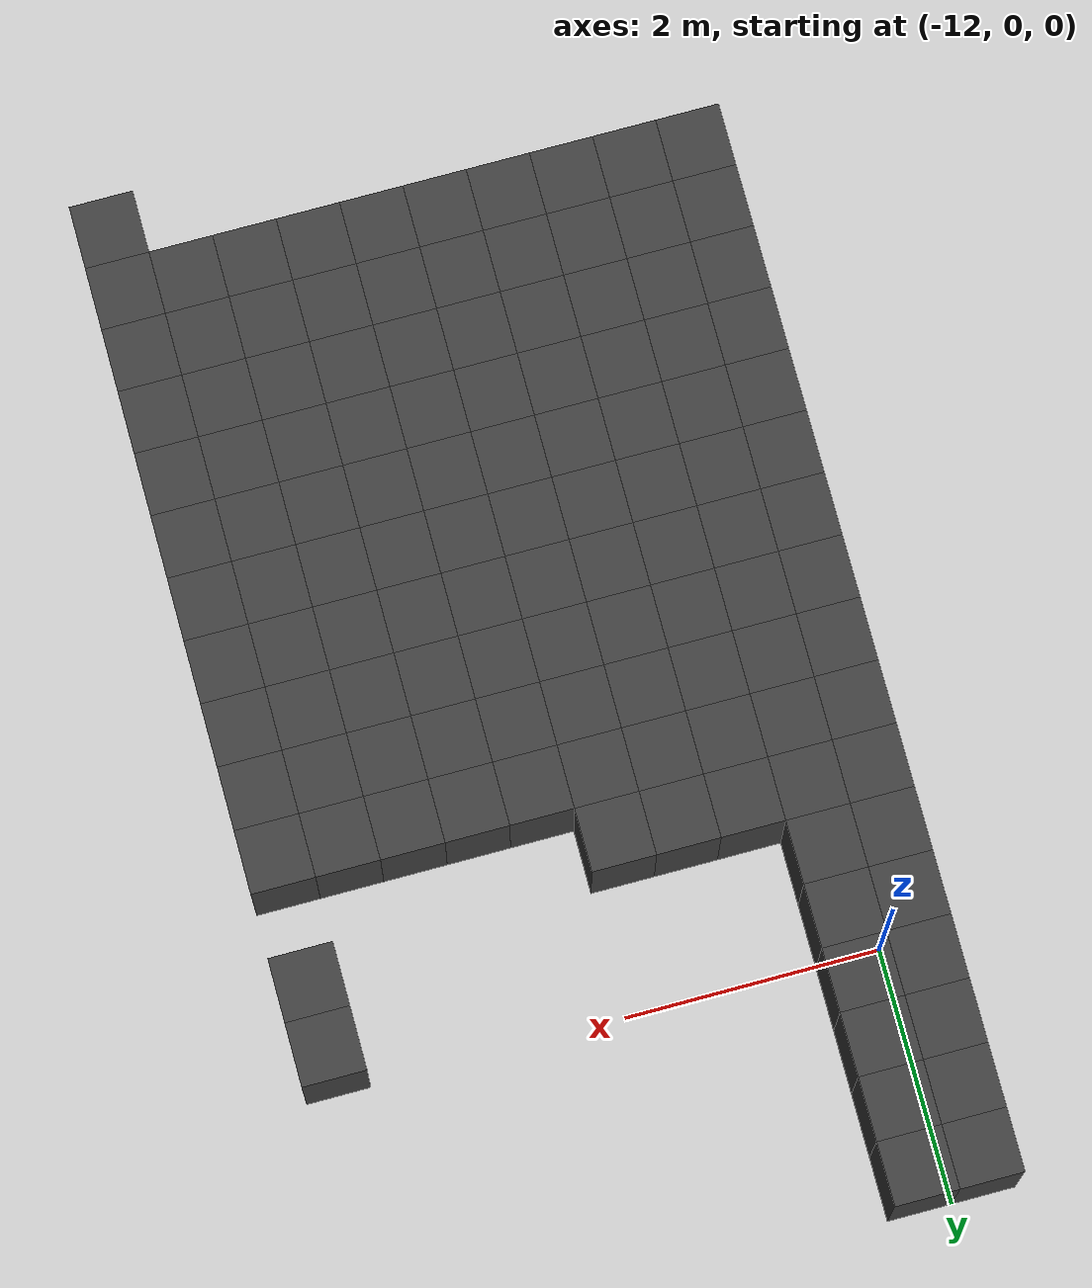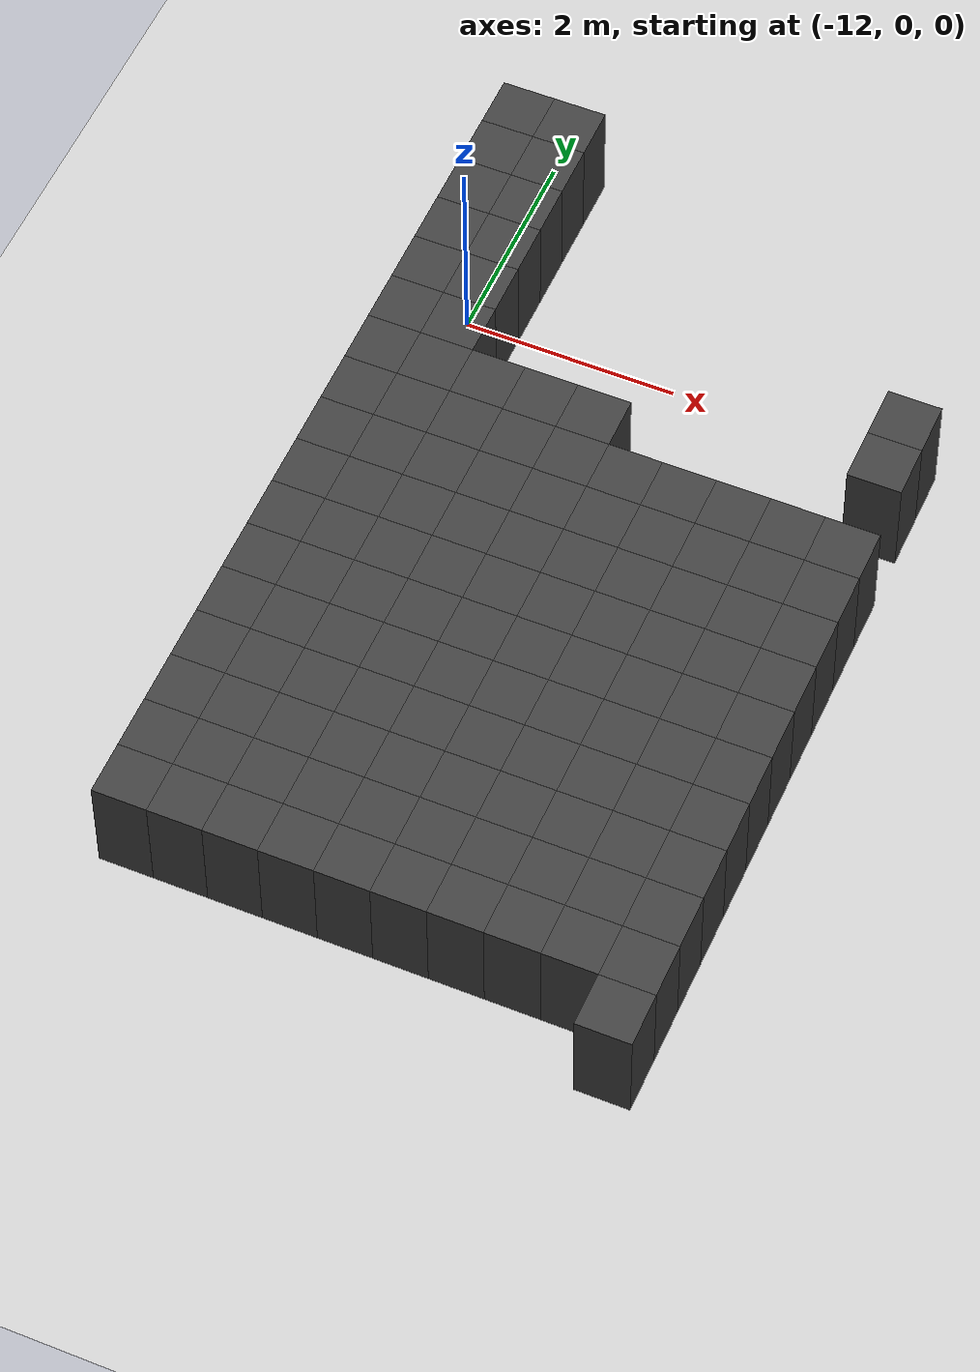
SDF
<sdf version="1.7">
 <world name="map_12885">
  <model name="ground_plane">
   <static>true</static>
   <link name="link">
    <collision name="collision">
     <geometry><plane><normal>0 0 1</normal><size>200 200</size></plane></geometry>
    </collision>
    <visual name="visual">
     <geometry><plane><normal>0 0 1</normal><size>200 200</size></plane></geometry>
     <material><ambient>0.8 0.8 0.8 1</ambient><diffuse>0.8 0.8 0.8 1</diffuse></material>
    </visual>
   </link>
  </model>
  <model name="maze_environment">
   <static>true</static>
   <link name="wall_890">
    <pose>-12.250 1.750 0.500 0 0 0</pose>
    <collision name="col"><geometry><box><size>0.5 0.5 1.0</size></box></geometry></collision>
    <visual name="vis">
     <geometry><box><size>0.5 0.5 1.0</size></box></geometry>
     <material><ambient>0.15 0.15 0.15 1</ambient><diffuse>0.25 0.25 0.25 1</diffuse></material>
    </visual>
   </link>
   <link name="wall_891">
    <pose>-11.750 1.750 0.500 0 0 0</pose>
    <collision name="col"><geometry><box><size>0.5 0.5 1.0</size></box></geometry></collision>
    <visual name="vis">
     <geometry><box><size>0.5 0.5 1.0</size></box></geometry>
     <material><ambient>0.15 0.15 0.15 1</ambient><diffuse>0.25 0.25 0.25 1</diffuse></material>
    </visual>
   </link>
   <link name="wall_932">
    <pose>-12.250 1.250 0.500 0 0 0</pose>
    <collision name="col"><geometry><box><size>0.5 0.5 1.0</size></box></geometry></collision>
    <visual name="vis">
     <geometry><box><size>0.5 0.5 1.0</size></box></geometry>
     <material><ambient>0.15 0.15 0.15 1</ambient><diffuse>0.25 0.25 0.25 1</diffuse></material>
    </visual>
   </link>
   <link name="wall_933">
    <pose>-11.750 1.250 0.500 0 0 0</pose>
    <collision name="col"><geometry><box><size>0.5 0.5 1.0</size></box></geometry></collision>
    <visual name="vis">
     <geometry><box><size>0.5 0.5 1.0</size></box></geometry>
     <material><ambient>0.15 0.15 0.15 1</ambient><diffuse>0.25 0.25 0.25 1</diffuse></material>
    </visual>
   </link>
   <link name="wall_971">
    <pose>-12.250 0.750 0.500 0 0 0</pose>
    <collision name="col"><geometry><box><size>0.5 0.5 1.0</size></box></geometry></collision>
    <visual name="vis">
     <geometry><box><size>0.5 0.5 1.0</size></box></geometry>
     <material><ambient>0.15 0.15 0.15 1</ambient><diffuse>0.25 0.25 0.25 1</diffuse></material>
    </visual>
   </link>
   <link name="wall_972">
    <pose>-11.750 0.750 0.500 0 0 0</pose>
    <collision name="col"><geometry><box><size>0.5 0.5 1.0</size></box></geometry></collision>
    <visual name="vis">
     <geometry><box><size>0.5 0.5 1.0</size></box></geometry>
     <material><ambient>0.15 0.15 0.15 1</ambient><diffuse>0.25 0.25 0.25 1</diffuse></material>
    </visual>
   </link>
   <link name="wall_1010">
    <pose>-12.250 0.250 0.500 0 0 0</pose>
    <collision name="col"><geometry><box><size>0.5 0.5 1.0</size></box></geometry></collision>
    <visual name="vis">
     <geometry><box><size>0.5 0.5 1.0</size></box></geometry>
     <material><ambient>0.15 0.15 0.15 1</ambient><diffuse>0.25 0.25 0.25 1</diffuse></material>
    </visual>
   </link>
   <link name="wall_1011">
    <pose>-11.750 0.250 0.500 0 0 0</pose>
    <collision name="col"><geometry><box><size>0.5 0.5 1.0</size></box></geometry></collision>
    <visual name="vis">
     <geometry><box><size>0.5 0.5 1.0</size></box></geometry>
     <material><ambient>0.15 0.15 0.15 1</ambient><diffuse>0.25 0.25 0.25 1</diffuse></material>
    </visual>
   </link>
   <link name="wall_1047">
    <pose>-12.250 -0.250 0.500 0 0 0</pose>
    <collision name="col"><geometry><box><size>0.5 0.5 1.0</size></box></geometry></collision>
    <visual name="vis">
     <geometry><box><size>0.5 0.5 1.0</size></box></geometry>
     <material><ambient>0.15 0.15 0.15 1</ambient><diffuse>0.25 0.25 0.25 1</diffuse></material>
    </visual>
   </link>
   <link name="wall_1048">
    <pose>-11.750 -0.250 0.500 0 0 0</pose>
    <collision name="col"><geometry><box><size>0.5 0.5 1.0</size></box></geometry></collision>
    <visual name="vis">
     <geometry><box><size>0.5 0.5 1.0</size></box></geometry>
     <material><ambient>0.15 0.15 0.15 1</ambient><diffuse>0.25 0.25 0.25 1</diffuse></material>
    </visual>
   </link>
   <link name="wall_1049">
    <pose>-7.750 -0.250 0.500 0 0 0</pose>
    <collision name="col"><geometry><box><size>0.5 0.5 1.0</size></box></geometry></collision>
    <visual name="vis">
     <geometry><box><size>0.5 0.5 1.0</size></box></geometry>
     <material><ambient>0.15 0.15 0.15 1</ambient><diffuse>0.25 0.25 0.25 1</diffuse></material>
    </visual>
   </link>
   <link name="wall_1081">
    <pose>-12.250 -0.750 0.500 0 0 0</pose>
    <collision name="col"><geometry><box><size>0.5 0.5 1.0</size></box></geometry></collision>
    <visual name="vis">
     <geometry><box><size>0.5 0.5 1.0</size></box></geometry>
     <material><ambient>0.15 0.15 0.15 1</ambient><diffuse>0.25 0.25 0.25 1</diffuse></material>
    </visual>
   </link>
   <link name="wall_1082">
    <pose>-11.750 -0.750 0.500 0 0 0</pose>
    <collision name="col"><geometry><box><size>0.5 0.5 1.0</size></box></geometry></collision>
    <visual name="vis">
     <geometry><box><size>0.5 0.5 1.0</size></box></geometry>
     <material><ambient>0.15 0.15 0.15 1</ambient><diffuse>0.25 0.25 0.25 1</diffuse></material>
    </visual>
   </link>
   <link name="wall_1083">
    <pose>-7.750 -0.750 0.500 0 0 0</pose>
    <collision name="col"><geometry><box><size>0.5 0.5 1.0</size></box></geometry></collision>
    <visual name="vis">
     <geometry><box><size>0.5 0.5 1.0</size></box></geometry>
     <material><ambient>0.15 0.15 0.15 1</ambient><diffuse>0.25 0.25 0.25 1</diffuse></material>
    </visual>
   </link>
   <link name="wall_1115">
    <pose>-12.250 -1.250 0.500 0 0 0</pose>
    <collision name="col"><geometry><box><size>0.5 0.5 1.0</size></box></geometry></collision>
    <visual name="vis">
     <geometry><box><size>0.5 0.5 1.0</size></box></geometry>
     <material><ambient>0.15 0.15 0.15 1</ambient><diffuse>0.25 0.25 0.25 1</diffuse></material>
    </visual>
   </link>
   <link name="wall_1116">
    <pose>-11.750 -1.250 0.500 0 0 0</pose>
    <collision name="col"><geometry><box><size>0.5 0.5 1.0</size></box></geometry></collision>
    <visual name="vis">
     <geometry><box><size>0.5 0.5 1.0</size></box></geometry>
     <material><ambient>0.15 0.15 0.15 1</ambient><diffuse>0.25 0.25 0.25 1</diffuse></material>
    </visual>
   </link>
   <link name="wall_1117">
    <pose>-11.250 -1.250 0.500 0 0 0</pose>
    <collision name="col"><geometry><box><size>0.5 0.5 1.0</size></box></geometry></collision>
    <visual name="vis">
     <geometry><box><size>0.5 0.5 1.0</size></box></geometry>
     <material><ambient>0.15 0.15 0.15 1</ambient><diffuse>0.25 0.25 0.25 1</diffuse></material>
    </visual>
   </link>
   <link name="wall_1118">
    <pose>-10.750 -1.250 0.500 0 0 0</pose>
    <collision name="col"><geometry><box><size>0.5 0.5 1.0</size></box></geometry></collision>
    <visual name="vis">
     <geometry><box><size>0.5 0.5 1.0</size></box></geometry>
     <material><ambient>0.15 0.15 0.15 1</ambient><diffuse>0.25 0.25 0.25 1</diffuse></material>
    </visual>
   </link>
   <link name="wall_1119">
    <pose>-10.250 -1.250 0.500 0 0 0</pose>
    <collision name="col"><geometry><box><size>0.5 0.5 1.0</size></box></geometry></collision>
    <visual name="vis">
     <geometry><box><size>0.5 0.5 1.0</size></box></geometry>
     <material><ambient>0.15 0.15 0.15 1</ambient><diffuse>0.25 0.25 0.25 1</diffuse></material>
    </visual>
   </link>
   <link name="wall_1148">
    <pose>-12.250 -1.750 0.500 0 0 0</pose>
    <collision name="col"><geometry><box><size>0.5 0.5 1.0</size></box></geometry></collision>
    <visual name="vis">
     <geometry><box><size>0.5 0.5 1.0</size></box></geometry>
     <material><ambient>0.15 0.15 0.15 1</ambient><diffuse>0.25 0.25 0.25 1</diffuse></material>
    </visual>
   </link>
   <link name="wall_1149">
    <pose>-11.750 -1.750 0.500 0 0 0</pose>
    <collision name="col"><geometry><box><size>0.5 0.5 1.0</size></box></geometry></collision>
    <visual name="vis">
     <geometry><box><size>0.5 0.5 1.0</size></box></geometry>
     <material><ambient>0.15 0.15 0.15 1</ambient><diffuse>0.25 0.25 0.25 1</diffuse></material>
    </visual>
   </link>
   <link name="wall_1150">
    <pose>-11.250 -1.750 0.500 0 0 0</pose>
    <collision name="col"><geometry><box><size>0.5 0.5 1.0</size></box></geometry></collision>
    <visual name="vis">
     <geometry><box><size>0.5 0.5 1.0</size></box></geometry>
     <material><ambient>0.15 0.15 0.15 1</ambient><diffuse>0.25 0.25 0.25 1</diffuse></material>
    </visual>
   </link>
   <link name="wall_1151">
    <pose>-10.750 -1.750 0.500 0 0 0</pose>
    <collision name="col"><geometry><box><size>0.5 0.5 1.0</size></box></geometry></collision>
    <visual name="vis">
     <geometry><box><size>0.5 0.5 1.0</size></box></geometry>
     <material><ambient>0.15 0.15 0.15 1</ambient><diffuse>0.25 0.25 0.25 1</diffuse></material>
    </visual>
   </link>
   <link name="wall_1152">
    <pose>-10.250 -1.750 0.500 0 0 0</pose>
    <collision name="col"><geometry><box><size>0.5 0.5 1.0</size></box></geometry></collision>
    <visual name="vis">
     <geometry><box><size>0.5 0.5 1.0</size></box></geometry>
     <material><ambient>0.15 0.15 0.15 1</ambient><diffuse>0.25 0.25 0.25 1</diffuse></material>
    </visual>
   </link>
   <link name="wall_1153">
    <pose>-9.750 -1.750 0.500 0 0 0</pose>
    <collision name="col"><geometry><box><size>0.5 0.5 1.0</size></box></geometry></collision>
    <visual name="vis">
     <geometry><box><size>0.5 0.5 1.0</size></box></geometry>
     <material><ambient>0.15 0.15 0.15 1</ambient><diffuse>0.25 0.25 0.25 1</diffuse></material>
    </visual>
   </link>
   <link name="wall_1154">
    <pose>-9.250 -1.750 0.500 0 0 0</pose>
    <collision name="col"><geometry><box><size>0.5 0.5 1.0</size></box></geometry></collision>
    <visual name="vis">
     <geometry><box><size>0.5 0.5 1.0</size></box></geometry>
     <material><ambient>0.15 0.15 0.15 1</ambient><diffuse>0.25 0.25 0.25 1</diffuse></material>
    </visual>
   </link>
   <link name="wall_1155">
    <pose>-8.750 -1.750 0.500 0 0 0</pose>
    <collision name="col"><geometry><box><size>0.5 0.5 1.0</size></box></geometry></collision>
    <visual name="vis">
     <geometry><box><size>0.5 0.5 1.0</size></box></geometry>
     <material><ambient>0.15 0.15 0.15 1</ambient><diffuse>0.25 0.25 0.25 1</diffuse></material>
    </visual>
   </link>
   <link name="wall_1156">
    <pose>-8.250 -1.750 0.500 0 0 0</pose>
    <collision name="col"><geometry><box><size>0.5 0.5 1.0</size></box></geometry></collision>
    <visual name="vis">
     <geometry><box><size>0.5 0.5 1.0</size></box></geometry>
     <material><ambient>0.15 0.15 0.15 1</ambient><diffuse>0.25 0.25 0.25 1</diffuse></material>
    </visual>
   </link>
   <link name="wall_1157">
    <pose>-7.750 -1.750 0.500 0 0 0</pose>
    <collision name="col"><geometry><box><size>0.5 0.5 1.0</size></box></geometry></collision>
    <visual name="vis">
     <geometry><box><size>0.5 0.5 1.0</size></box></geometry>
     <material><ambient>0.15 0.15 0.15 1</ambient><diffuse>0.25 0.25 0.25 1</diffuse></material>
    </visual>
   </link>
   <link name="wall_1193">
    <pose>-12.250 -2.250 0.500 0 0 0</pose>
    <collision name="col"><geometry><box><size>0.5 0.5 1.0</size></box></geometry></collision>
    <visual name="vis">
     <geometry><box><size>0.5 0.5 1.0</size></box></geometry>
     <material><ambient>0.15 0.15 0.15 1</ambient><diffuse>0.25 0.25 0.25 1</diffuse></material>
    </visual>
   </link>
   <link name="wall_1194">
    <pose>-11.750 -2.250 0.500 0 0 0</pose>
    <collision name="col"><geometry><box><size>0.5 0.5 1.0</size></box></geometry></collision>
    <visual name="vis">
     <geometry><box><size>0.5 0.5 1.0</size></box></geometry>
     <material><ambient>0.15 0.15 0.15 1</ambient><diffuse>0.25 0.25 0.25 1</diffuse></material>
    </visual>
   </link>
   <link name="wall_1195">
    <pose>-11.250 -2.250 0.500 0 0 0</pose>
    <collision name="col"><geometry><box><size>0.5 0.5 1.0</size></box></geometry></collision>
    <visual name="vis">
     <geometry><box><size>0.5 0.5 1.0</size></box></geometry>
     <material><ambient>0.15 0.15 0.15 1</ambient><diffuse>0.25 0.25 0.25 1</diffuse></material>
    </visual>
   </link>
   <link name="wall_1196">
    <pose>-10.750 -2.250 0.500 0 0 0</pose>
    <collision name="col"><geometry><box><size>0.5 0.5 1.0</size></box></geometry></collision>
    <visual name="vis">
     <geometry><box><size>0.5 0.5 1.0</size></box></geometry>
     <material><ambient>0.15 0.15 0.15 1</ambient><diffuse>0.25 0.25 0.25 1</diffuse></material>
    </visual>
   </link>
   <link name="wall_1197">
    <pose>-10.250 -2.250 0.500 0 0 0</pose>
    <collision name="col"><geometry><box><size>0.5 0.5 1.0</size></box></geometry></collision>
    <visual name="vis">
     <geometry><box><size>0.5 0.5 1.0</size></box></geometry>
     <material><ambient>0.15 0.15 0.15 1</ambient><diffuse>0.25 0.25 0.25 1</diffuse></material>
    </visual>
   </link>
   <link name="wall_1198">
    <pose>-9.750 -2.250 0.500 0 0 0</pose>
    <collision name="col"><geometry><box><size>0.5 0.5 1.0</size></box></geometry></collision>
    <visual name="vis">
     <geometry><box><size>0.5 0.5 1.0</size></box></geometry>
     <material><ambient>0.15 0.15 0.15 1</ambient><diffuse>0.25 0.25 0.25 1</diffuse></material>
    </visual>
   </link>
   <link name="wall_1199">
    <pose>-9.250 -2.250 0.500 0 0 0</pose>
    <collision name="col"><geometry><box><size>0.5 0.5 1.0</size></box></geometry></collision>
    <visual name="vis">
     <geometry><box><size>0.5 0.5 1.0</size></box></geometry>
     <material><ambient>0.15 0.15 0.15 1</ambient><diffuse>0.25 0.25 0.25 1</diffuse></material>
    </visual>
   </link>
   <link name="wall_1200">
    <pose>-8.750 -2.250 0.500 0 0 0</pose>
    <collision name="col"><geometry><box><size>0.5 0.5 1.0</size></box></geometry></collision>
    <visual name="vis">
     <geometry><box><size>0.5 0.5 1.0</size></box></geometry>
     <material><ambient>0.15 0.15 0.15 1</ambient><diffuse>0.25 0.25 0.25 1</diffuse></material>
    </visual>
   </link>
   <link name="wall_1201">
    <pose>-8.250 -2.250 0.500 0 0 0</pose>
    <collision name="col"><geometry><box><size>0.5 0.5 1.0</size></box></geometry></collision>
    <visual name="vis">
     <geometry><box><size>0.5 0.5 1.0</size></box></geometry>
     <material><ambient>0.15 0.15 0.15 1</ambient><diffuse>0.25 0.25 0.25 1</diffuse></material>
    </visual>
   </link>
   <link name="wall_1202">
    <pose>-7.750 -2.250 0.500 0 0 0</pose>
    <collision name="col"><geometry><box><size>0.5 0.5 1.0</size></box></geometry></collision>
    <visual name="vis">
     <geometry><box><size>0.5 0.5 1.0</size></box></geometry>
     <material><ambient>0.15 0.15 0.15 1</ambient><diffuse>0.25 0.25 0.25 1</diffuse></material>
    </visual>
   </link>
   <link name="wall_1234">
    <pose>-12.250 -2.750 0.500 0 0 0</pose>
    <collision name="col"><geometry><box><size>0.5 0.5 1.0</size></box></geometry></collision>
    <visual name="vis">
     <geometry><box><size>0.5 0.5 1.0</size></box></geometry>
     <material><ambient>0.15 0.15 0.15 1</ambient><diffuse>0.25 0.25 0.25 1</diffuse></material>
    </visual>
   </link>
   <link name="wall_1235">
    <pose>-11.750 -2.750 0.500 0 0 0</pose>
    <collision name="col"><geometry><box><size>0.5 0.5 1.0</size></box></geometry></collision>
    <visual name="vis">
     <geometry><box><size>0.5 0.5 1.0</size></box></geometry>
     <material><ambient>0.15 0.15 0.15 1</ambient><diffuse>0.25 0.25 0.25 1</diffuse></material>
    </visual>
   </link>
   <link name="wall_1236">
    <pose>-11.250 -2.750 0.500 0 0 0</pose>
    <collision name="col"><geometry><box><size>0.5 0.5 1.0</size></box></geometry></collision>
    <visual name="vis">
     <geometry><box><size>0.5 0.5 1.0</size></box></geometry>
     <material><ambient>0.15 0.15 0.15 1</ambient><diffuse>0.25 0.25 0.25 1</diffuse></material>
    </visual>
   </link>
   <link name="wall_1237">
    <pose>-10.750 -2.750 0.500 0 0 0</pose>
    <collision name="col"><geometry><box><size>0.5 0.5 1.0</size></box></geometry></collision>
    <visual name="vis">
     <geometry><box><size>0.5 0.5 1.0</size></box></geometry>
     <material><ambient>0.15 0.15 0.15 1</ambient><diffuse>0.25 0.25 0.25 1</diffuse></material>
    </visual>
   </link>
   <link name="wall_1238">
    <pose>-10.250 -2.750 0.500 0 0 0</pose>
    <collision name="col"><geometry><box><size>0.5 0.5 1.0</size></box></geometry></collision>
    <visual name="vis">
     <geometry><box><size>0.5 0.5 1.0</size></box></geometry>
     <material><ambient>0.15 0.15 0.15 1</ambient><diffuse>0.25 0.25 0.25 1</diffuse></material>
    </visual>
   </link>
   <link name="wall_1239">
    <pose>-9.750 -2.750 0.500 0 0 0</pose>
    <collision name="col"><geometry><box><size>0.5 0.5 1.0</size></box></geometry></collision>
    <visual name="vis">
     <geometry><box><size>0.5 0.5 1.0</size></box></geometry>
     <material><ambient>0.15 0.15 0.15 1</ambient><diffuse>0.25 0.25 0.25 1</diffuse></material>
    </visual>
   </link>
   <link name="wall_1240">
    <pose>-9.250 -2.750 0.500 0 0 0</pose>
    <collision name="col"><geometry><box><size>0.5 0.5 1.0</size></box></geometry></collision>
    <visual name="vis">
     <geometry><box><size>0.5 0.5 1.0</size></box></geometry>
     <material><ambient>0.15 0.15 0.15 1</ambient><diffuse>0.25 0.25 0.25 1</diffuse></material>
    </visual>
   </link>
   <link name="wall_1241">
    <pose>-8.750 -2.750 0.500 0 0 0</pose>
    <collision name="col"><geometry><box><size>0.5 0.5 1.0</size></box></geometry></collision>
    <visual name="vis">
     <geometry><box><size>0.5 0.5 1.0</size></box></geometry>
     <material><ambient>0.15 0.15 0.15 1</ambient><diffuse>0.25 0.25 0.25 1</diffuse></material>
    </visual>
   </link>
   <link name="wall_1242">
    <pose>-8.250 -2.750 0.500 0 0 0</pose>
    <collision name="col"><geometry><box><size>0.5 0.5 1.0</size></box></geometry></collision>
    <visual name="vis">
     <geometry><box><size>0.5 0.5 1.0</size></box></geometry>
     <material><ambient>0.15 0.15 0.15 1</ambient><diffuse>0.25 0.25 0.25 1</diffuse></material>
    </visual>
   </link>
   <link name="wall_1243">
    <pose>-7.750 -2.750 0.500 0 0 0</pose>
    <collision name="col"><geometry><box><size>0.5 0.5 1.0</size></box></geometry></collision>
    <visual name="vis">
     <geometry><box><size>0.5 0.5 1.0</size></box></geometry>
     <material><ambient>0.15 0.15 0.15 1</ambient><diffuse>0.25 0.25 0.25 1</diffuse></material>
    </visual>
   </link>
   <link name="wall_1275">
    <pose>-12.250 -3.250 0.500 0 0 0</pose>
    <collision name="col"><geometry><box><size>0.5 0.5 1.0</size></box></geometry></collision>
    <visual name="vis">
     <geometry><box><size>0.5 0.5 1.0</size></box></geometry>
     <material><ambient>0.15 0.15 0.15 1</ambient><diffuse>0.25 0.25 0.25 1</diffuse></material>
    </visual>
   </link>
   <link name="wall_1276">
    <pose>-11.750 -3.250 0.500 0 0 0</pose>
    <collision name="col"><geometry><box><size>0.5 0.5 1.0</size></box></geometry></collision>
    <visual name="vis">
     <geometry><box><size>0.5 0.5 1.0</size></box></geometry>
     <material><ambient>0.15 0.15 0.15 1</ambient><diffuse>0.25 0.25 0.25 1</diffuse></material>
    </visual>
   </link>
   <link name="wall_1277">
    <pose>-11.250 -3.250 0.500 0 0 0</pose>
    <collision name="col"><geometry><box><size>0.5 0.5 1.0</size></box></geometry></collision>
    <visual name="vis">
     <geometry><box><size>0.5 0.5 1.0</size></box></geometry>
     <material><ambient>0.15 0.15 0.15 1</ambient><diffuse>0.25 0.25 0.25 1</diffuse></material>
    </visual>
   </link>
   <link name="wall_1278">
    <pose>-10.750 -3.250 0.500 0 0 0</pose>
    <collision name="col"><geometry><box><size>0.5 0.5 1.0</size></box></geometry></collision>
    <visual name="vis">
     <geometry><box><size>0.5 0.5 1.0</size></box></geometry>
     <material><ambient>0.15 0.15 0.15 1</ambient><diffuse>0.25 0.25 0.25 1</diffuse></material>
    </visual>
   </link>
   <link name="wall_1279">
    <pose>-10.250 -3.250 0.500 0 0 0</pose>
    <collision name="col"><geometry><box><size>0.5 0.5 1.0</size></box></geometry></collision>
    <visual name="vis">
     <geometry><box><size>0.5 0.5 1.0</size></box></geometry>
     <material><ambient>0.15 0.15 0.15 1</ambient><diffuse>0.25 0.25 0.25 1</diffuse></material>
    </visual>
   </link>
   <link name="wall_1280">
    <pose>-9.750 -3.250 0.500 0 0 0</pose>
    <collision name="col"><geometry><box><size>0.5 0.5 1.0</size></box></geometry></collision>
    <visual name="vis">
     <geometry><box><size>0.5 0.5 1.0</size></box></geometry>
     <material><ambient>0.15 0.15 0.15 1</ambient><diffuse>0.25 0.25 0.25 1</diffuse></material>
    </visual>
   </link>
   <link name="wall_1281">
    <pose>-9.250 -3.250 0.500 0 0 0</pose>
    <collision name="col"><geometry><box><size>0.5 0.5 1.0</size></box></geometry></collision>
    <visual name="vis">
     <geometry><box><size>0.5 0.5 1.0</size></box></geometry>
     <material><ambient>0.15 0.15 0.15 1</ambient><diffuse>0.25 0.25 0.25 1</diffuse></material>
    </visual>
   </link>
   <link name="wall_1282">
    <pose>-8.750 -3.250 0.500 0 0 0</pose>
    <collision name="col"><geometry><box><size>0.5 0.5 1.0</size></box></geometry></collision>
    <visual name="vis">
     <geometry><box><size>0.5 0.5 1.0</size></box></geometry>
     <material><ambient>0.15 0.15 0.15 1</ambient><diffuse>0.25 0.25 0.25 1</diffuse></material>
    </visual>
   </link>
   <link name="wall_1283">
    <pose>-8.250 -3.250 0.500 0 0 0</pose>
    <collision name="col"><geometry><box><size>0.5 0.5 1.0</size></box></geometry></collision>
    <visual name="vis">
     <geometry><box><size>0.5 0.5 1.0</size></box></geometry>
     <material><ambient>0.15 0.15 0.15 1</ambient><diffuse>0.25 0.25 0.25 1</diffuse></material>
    </visual>
   </link>
   <link name="wall_1284">
    <pose>-7.750 -3.250 0.500 0 0 0</pose>
    <collision name="col"><geometry><box><size>0.5 0.5 1.0</size></box></geometry></collision>
    <visual name="vis">
     <geometry><box><size>0.5 0.5 1.0</size></box></geometry>
     <material><ambient>0.15 0.15 0.15 1</ambient><diffuse>0.25 0.25 0.25 1</diffuse></material>
    </visual>
   </link>
   <link name="wall_1316">
    <pose>-12.250 -3.750 0.500 0 0 0</pose>
    <collision name="col"><geometry><box><size>0.5 0.5 1.0</size></box></geometry></collision>
    <visual name="vis">
     <geometry><box><size>0.5 0.5 1.0</size></box></geometry>
     <material><ambient>0.15 0.15 0.15 1</ambient><diffuse>0.25 0.25 0.25 1</diffuse></material>
    </visual>
   </link>
   <link name="wall_1317">
    <pose>-11.750 -3.750 0.500 0 0 0</pose>
    <collision name="col"><geometry><box><size>0.5 0.5 1.0</size></box></geometry></collision>
    <visual name="vis">
     <geometry><box><size>0.5 0.5 1.0</size></box></geometry>
     <material><ambient>0.15 0.15 0.15 1</ambient><diffuse>0.25 0.25 0.25 1</diffuse></material>
    </visual>
   </link>
   <link name="wall_1318">
    <pose>-11.250 -3.750 0.500 0 0 0</pose>
    <collision name="col"><geometry><box><size>0.5 0.5 1.0</size></box></geometry></collision>
    <visual name="vis">
     <geometry><box><size>0.5 0.5 1.0</size></box></geometry>
     <material><ambient>0.15 0.15 0.15 1</ambient><diffuse>0.25 0.25 0.25 1</diffuse></material>
    </visual>
   </link>
   <link name="wall_1319">
    <pose>-10.750 -3.750 0.500 0 0 0</pose>
    <collision name="col"><geometry><box><size>0.5 0.5 1.0</size></box></geometry></collision>
    <visual name="vis">
     <geometry><box><size>0.5 0.5 1.0</size></box></geometry>
     <material><ambient>0.15 0.15 0.15 1</ambient><diffuse>0.25 0.25 0.25 1</diffuse></material>
    </visual>
   </link>
   <link name="wall_1320">
    <pose>-10.250 -3.750 0.500 0 0 0</pose>
    <collision name="col"><geometry><box><size>0.5 0.5 1.0</size></box></geometry></collision>
    <visual name="vis">
     <geometry><box><size>0.5 0.5 1.0</size></box></geometry>
     <material><ambient>0.15 0.15 0.15 1</ambient><diffuse>0.25 0.25 0.25 1</diffuse></material>
    </visual>
   </link>
   <link name="wall_1321">
    <pose>-9.750 -3.750 0.500 0 0 0</pose>
    <collision name="col"><geometry><box><size>0.5 0.5 1.0</size></box></geometry></collision>
    <visual name="vis">
     <geometry><box><size>0.5 0.5 1.0</size></box></geometry>
     <material><ambient>0.15 0.15 0.15 1</ambient><diffuse>0.25 0.25 0.25 1</diffuse></material>
    </visual>
   </link>
   <link name="wall_1322">
    <pose>-9.250 -3.750 0.500 0 0 0</pose>
    <collision name="col"><geometry><box><size>0.5 0.5 1.0</size></box></geometry></collision>
    <visual name="vis">
     <geometry><box><size>0.5 0.5 1.0</size></box></geometry>
     <material><ambient>0.15 0.15 0.15 1</ambient><diffuse>0.25 0.25 0.25 1</diffuse></material>
    </visual>
   </link>
   <link name="wall_1323">
    <pose>-8.750 -3.750 0.500 0 0 0</pose>
    <collision name="col"><geometry><box><size>0.5 0.5 1.0</size></box></geometry></collision>
    <visual name="vis">
     <geometry><box><size>0.5 0.5 1.0</size></box></geometry>
     <material><ambient>0.15 0.15 0.15 1</ambient><diffuse>0.25 0.25 0.25 1</diffuse></material>
    </visual>
   </link>
   <link name="wall_1324">
    <pose>-8.250 -3.750 0.500 0 0 0</pose>
    <collision name="col"><geometry><box><size>0.5 0.5 1.0</size></box></geometry></collision>
    <visual name="vis">
     <geometry><box><size>0.5 0.5 1.0</size></box></geometry>
     <material><ambient>0.15 0.15 0.15 1</ambient><diffuse>0.25 0.25 0.25 1</diffuse></material>
    </visual>
   </link>
   <link name="wall_1325">
    <pose>-7.750 -3.750 0.500 0 0 0</pose>
    <collision name="col"><geometry><box><size>0.5 0.5 1.0</size></box></geometry></collision>
    <visual name="vis">
     <geometry><box><size>0.5 0.5 1.0</size></box></geometry>
     <material><ambient>0.15 0.15 0.15 1</ambient><diffuse>0.25 0.25 0.25 1</diffuse></material>
    </visual>
   </link>
   <link name="wall_1357">
    <pose>-12.250 -4.250 0.500 0 0 0</pose>
    <collision name="col"><geometry><box><size>0.5 0.5 1.0</size></box></geometry></collision>
    <visual name="vis">
     <geometry><box><size>0.5 0.5 1.0</size></box></geometry>
     <material><ambient>0.15 0.15 0.15 1</ambient><diffuse>0.25 0.25 0.25 1</diffuse></material>
    </visual>
   </link>
   <link name="wall_1358">
    <pose>-11.750 -4.250 0.500 0 0 0</pose>
    <collision name="col"><geometry><box><size>0.5 0.5 1.0</size></box></geometry></collision>
    <visual name="vis">
     <geometry><box><size>0.5 0.5 1.0</size></box></geometry>
     <material><ambient>0.15 0.15 0.15 1</ambient><diffuse>0.25 0.25 0.25 1</diffuse></material>
    </visual>
   </link>
   <link name="wall_1359">
    <pose>-11.250 -4.250 0.500 0 0 0</pose>
    <collision name="col"><geometry><box><size>0.5 0.5 1.0</size></box></geometry></collision>
    <visual name="vis">
     <geometry><box><size>0.5 0.5 1.0</size></box></geometry>
     <material><ambient>0.15 0.15 0.15 1</ambient><diffuse>0.25 0.25 0.25 1</diffuse></material>
    </visual>
   </link>
   <link name="wall_1360">
    <pose>-10.750 -4.250 0.500 0 0 0</pose>
    <collision name="col"><geometry><box><size>0.5 0.5 1.0</size></box></geometry></collision>
    <visual name="vis">
     <geometry><box><size>0.5 0.5 1.0</size></box></geometry>
     <material><ambient>0.15 0.15 0.15 1</ambient><diffuse>0.25 0.25 0.25 1</diffuse></material>
    </visual>
   </link>
   <link name="wall_1361">
    <pose>-10.250 -4.250 0.500 0 0 0</pose>
    <collision name="col"><geometry><box><size>0.5 0.5 1.0</size></box></geometry></collision>
    <visual name="vis">
     <geometry><box><size>0.5 0.5 1.0</size></box></geometry>
     <material><ambient>0.15 0.15 0.15 1</ambient><diffuse>0.25 0.25 0.25 1</diffuse></material>
    </visual>
   </link>
   <link name="wall_1362">
    <pose>-9.750 -4.250 0.500 0 0 0</pose>
    <collision name="col"><geometry><box><size>0.5 0.5 1.0</size></box></geometry></collision>
    <visual name="vis">
     <geometry><box><size>0.5 0.5 1.0</size></box></geometry>
     <material><ambient>0.15 0.15 0.15 1</ambient><diffuse>0.25 0.25 0.25 1</diffuse></material>
    </visual>
   </link>
   <link name="wall_1363">
    <pose>-9.250 -4.250 0.500 0 0 0</pose>
    <collision name="col"><geometry><box><size>0.5 0.5 1.0</size></box></geometry></collision>
    <visual name="vis">
     <geometry><box><size>0.5 0.5 1.0</size></box></geometry>
     <material><ambient>0.15 0.15 0.15 1</ambient><diffuse>0.25 0.25 0.25 1</diffuse></material>
    </visual>
   </link>
   <link name="wall_1364">
    <pose>-8.750 -4.250 0.500 0 0 0</pose>
    <collision name="col"><geometry><box><size>0.5 0.5 1.0</size></box></geometry></collision>
    <visual name="vis">
     <geometry><box><size>0.5 0.5 1.0</size></box></geometry>
     <material><ambient>0.15 0.15 0.15 1</ambient><diffuse>0.25 0.25 0.25 1</diffuse></material>
    </visual>
   </link>
   <link name="wall_1365">
    <pose>-8.250 -4.250 0.500 0 0 0</pose>
    <collision name="col"><geometry><box><size>0.5 0.5 1.0</size></box></geometry></collision>
    <visual name="vis">
     <geometry><box><size>0.5 0.5 1.0</size></box></geometry>
     <material><ambient>0.15 0.15 0.15 1</ambient><diffuse>0.25 0.25 0.25 1</diffuse></material>
    </visual>
   </link>
   <link name="wall_1366">
    <pose>-7.750 -4.250 0.500 0 0 0</pose>
    <collision name="col"><geometry><box><size>0.5 0.5 1.0</size></box></geometry></collision>
    <visual name="vis">
     <geometry><box><size>0.5 0.5 1.0</size></box></geometry>
     <material><ambient>0.15 0.15 0.15 1</ambient><diffuse>0.25 0.25 0.25 1</diffuse></material>
    </visual>
   </link>
   <link name="wall_1398">
    <pose>-12.250 -4.750 0.500 0 0 0</pose>
    <collision name="col"><geometry><box><size>0.5 0.5 1.0</size></box></geometry></collision>
    <visual name="vis">
     <geometry><box><size>0.5 0.5 1.0</size></box></geometry>
     <material><ambient>0.15 0.15 0.15 1</ambient><diffuse>0.25 0.25 0.25 1</diffuse></material>
    </visual>
   </link>
   <link name="wall_1399">
    <pose>-11.750 -4.750 0.500 0 0 0</pose>
    <collision name="col"><geometry><box><size>0.5 0.5 1.0</size></box></geometry></collision>
    <visual name="vis">
     <geometry><box><size>0.5 0.5 1.0</size></box></geometry>
     <material><ambient>0.15 0.15 0.15 1</ambient><diffuse>0.25 0.25 0.25 1</diffuse></material>
    </visual>
   </link>
   <link name="wall_1400">
    <pose>-11.250 -4.750 0.500 0 0 0</pose>
    <collision name="col"><geometry><box><size>0.5 0.5 1.0</size></box></geometry></collision>
    <visual name="vis">
     <geometry><box><size>0.5 0.5 1.0</size></box></geometry>
     <material><ambient>0.15 0.15 0.15 1</ambient><diffuse>0.25 0.25 0.25 1</diffuse></material>
    </visual>
   </link>
   <link name="wall_1401">
    <pose>-10.750 -4.750 0.500 0 0 0</pose>
    <collision name="col"><geometry><box><size>0.5 0.5 1.0</size></box></geometry></collision>
    <visual name="vis">
     <geometry><box><size>0.5 0.5 1.0</size></box></geometry>
     <material><ambient>0.15 0.15 0.15 1</ambient><diffuse>0.25 0.25 0.25 1</diffuse></material>
    </visual>
   </link>
   <link name="wall_1402">
    <pose>-10.250 -4.750 0.500 0 0 0</pose>
    <collision name="col"><geometry><box><size>0.5 0.5 1.0</size></box></geometry></collision>
    <visual name="vis">
     <geometry><box><size>0.5 0.5 1.0</size></box></geometry>
     <material><ambient>0.15 0.15 0.15 1</ambient><diffuse>0.25 0.25 0.25 1</diffuse></material>
    </visual>
   </link>
   <link name="wall_1403">
    <pose>-9.750 -4.750 0.500 0 0 0</pose>
    <collision name="col"><geometry><box><size>0.5 0.5 1.0</size></box></geometry></collision>
    <visual name="vis">
     <geometry><box><size>0.5 0.5 1.0</size></box></geometry>
     <material><ambient>0.15 0.15 0.15 1</ambient><diffuse>0.25 0.25 0.25 1</diffuse></material>
    </visual>
   </link>
   <link name="wall_1404">
    <pose>-9.250 -4.750 0.500 0 0 0</pose>
    <collision name="col"><geometry><box><size>0.5 0.5 1.0</size></box></geometry></collision>
    <visual name="vis">
     <geometry><box><size>0.5 0.5 1.0</size></box></geometry>
     <material><ambient>0.15 0.15 0.15 1</ambient><diffuse>0.25 0.25 0.25 1</diffuse></material>
    </visual>
   </link>
   <link name="wall_1405">
    <pose>-8.750 -4.750 0.500 0 0 0</pose>
    <collision name="col"><geometry><box><size>0.5 0.5 1.0</size></box></geometry></collision>
    <visual name="vis">
     <geometry><box><size>0.5 0.5 1.0</size></box></geometry>
     <material><ambient>0.15 0.15 0.15 1</ambient><diffuse>0.25 0.25 0.25 1</diffuse></material>
    </visual>
   </link>
   <link name="wall_1406">
    <pose>-8.250 -4.750 0.500 0 0 0</pose>
    <collision name="col"><geometry><box><size>0.5 0.5 1.0</size></box></geometry></collision>
    <visual name="vis">
     <geometry><box><size>0.5 0.5 1.0</size></box></geometry>
     <material><ambient>0.15 0.15 0.15 1</ambient><diffuse>0.25 0.25 0.25 1</diffuse></material>
    </visual>
   </link>
   <link name="wall_1407">
    <pose>-7.750 -4.750 0.500 0 0 0</pose>
    <collision name="col"><geometry><box><size>0.5 0.5 1.0</size></box></geometry></collision>
    <visual name="vis">
     <geometry><box><size>0.5 0.5 1.0</size></box></geometry>
     <material><ambient>0.15 0.15 0.15 1</ambient><diffuse>0.25 0.25 0.25 1</diffuse></material>
    </visual>
   </link>
   <link name="wall_1426">
    <pose>-12.250 -5.250 0.500 0 0 0</pose>
    <collision name="col"><geometry><box><size>0.5 0.5 1.0</size></box></geometry></collision>
    <visual name="vis">
     <geometry><box><size>0.5 0.5 1.0</size></box></geometry>
     <material><ambient>0.15 0.15 0.15 1</ambient><diffuse>0.25 0.25 0.25 1</diffuse></material>
    </visual>
   </link>
   <link name="wall_1427">
    <pose>-11.750 -5.250 0.500 0 0 0</pose>
    <collision name="col"><geometry><box><size>0.5 0.5 1.0</size></box></geometry></collision>
    <visual name="vis">
     <geometry><box><size>0.5 0.5 1.0</size></box></geometry>
     <material><ambient>0.15 0.15 0.15 1</ambient><diffuse>0.25 0.25 0.25 1</diffuse></material>
    </visual>
   </link>
   <link name="wall_1428">
    <pose>-11.250 -5.250 0.500 0 0 0</pose>
    <collision name="col"><geometry><box><size>0.5 0.5 1.0</size></box></geometry></collision>
    <visual name="vis">
     <geometry><box><size>0.5 0.5 1.0</size></box></geometry>
     <material><ambient>0.15 0.15 0.15 1</ambient><diffuse>0.25 0.25 0.25 1</diffuse></material>
    </visual>
   </link>
   <link name="wall_1429">
    <pose>-10.750 -5.250 0.500 0 0 0</pose>
    <collision name="col"><geometry><box><size>0.5 0.5 1.0</size></box></geometry></collision>
    <visual name="vis">
     <geometry><box><size>0.5 0.5 1.0</size></box></geometry>
     <material><ambient>0.15 0.15 0.15 1</ambient><diffuse>0.25 0.25 0.25 1</diffuse></material>
    </visual>
   </link>
   <link name="wall_1430">
    <pose>-10.250 -5.250 0.500 0 0 0</pose>
    <collision name="col"><geometry><box><size>0.5 0.5 1.0</size></box></geometry></collision>
    <visual name="vis">
     <geometry><box><size>0.5 0.5 1.0</size></box></geometry>
     <material><ambient>0.15 0.15 0.15 1</ambient><diffuse>0.25 0.25 0.25 1</diffuse></material>
    </visual>
   </link>
   <link name="wall_1431">
    <pose>-9.750 -5.250 0.500 0 0 0</pose>
    <collision name="col"><geometry><box><size>0.5 0.5 1.0</size></box></geometry></collision>
    <visual name="vis">
     <geometry><box><size>0.5 0.5 1.0</size></box></geometry>
     <material><ambient>0.15 0.15 0.15 1</ambient><diffuse>0.25 0.25 0.25 1</diffuse></material>
    </visual>
   </link>
   <link name="wall_1432">
    <pose>-9.250 -5.250 0.500 0 0 0</pose>
    <collision name="col"><geometry><box><size>0.5 0.5 1.0</size></box></geometry></collision>
    <visual name="vis">
     <geometry><box><size>0.5 0.5 1.0</size></box></geometry>
     <material><ambient>0.15 0.15 0.15 1</ambient><diffuse>0.25 0.25 0.25 1</diffuse></material>
    </visual>
   </link>
   <link name="wall_1433">
    <pose>-8.750 -5.250 0.500 0 0 0</pose>
    <collision name="col"><geometry><box><size>0.5 0.5 1.0</size></box></geometry></collision>
    <visual name="vis">
     <geometry><box><size>0.5 0.5 1.0</size></box></geometry>
     <material><ambient>0.15 0.15 0.15 1</ambient><diffuse>0.25 0.25 0.25 1</diffuse></material>
    </visual>
   </link>
   <link name="wall_1434">
    <pose>-8.250 -5.250 0.500 0 0 0</pose>
    <collision name="col"><geometry><box><size>0.5 0.5 1.0</size></box></geometry></collision>
    <visual name="vis">
     <geometry><box><size>0.5 0.5 1.0</size></box></geometry>
     <material><ambient>0.15 0.15 0.15 1</ambient><diffuse>0.25 0.25 0.25 1</diffuse></material>
    </visual>
   </link>
   <link name="wall_1435">
    <pose>-7.750 -5.250 0.500 0 0 0</pose>
    <collision name="col"><geometry><box><size>0.5 0.5 1.0</size></box></geometry></collision>
    <visual name="vis">
     <geometry><box><size>0.5 0.5 1.0</size></box></geometry>
     <material><ambient>0.15 0.15 0.15 1</ambient><diffuse>0.25 0.25 0.25 1</diffuse></material>
    </visual>
   </link>
   <link name="wall_1454">
    <pose>-12.250 -5.750 0.500 0 0 0</pose>
    <collision name="col"><geometry><box><size>0.5 0.5 1.0</size></box></geometry></collision>
    <visual name="vis">
     <geometry><box><size>0.5 0.5 1.0</size></box></geometry>
     <material><ambient>0.15 0.15 0.15 1</ambient><diffuse>0.25 0.25 0.25 1</diffuse></material>
    </visual>
   </link>
   <link name="wall_1455">
    <pose>-11.750 -5.750 0.500 0 0 0</pose>
    <collision name="col"><geometry><box><size>0.5 0.5 1.0</size></box></geometry></collision>
    <visual name="vis">
     <geometry><box><size>0.5 0.5 1.0</size></box></geometry>
     <material><ambient>0.15 0.15 0.15 1</ambient><diffuse>0.25 0.25 0.25 1</diffuse></material>
    </visual>
   </link>
   <link name="wall_1456">
    <pose>-11.250 -5.750 0.500 0 0 0</pose>
    <collision name="col"><geometry><box><size>0.5 0.5 1.0</size></box></geometry></collision>
    <visual name="vis">
     <geometry><box><size>0.5 0.5 1.0</size></box></geometry>
     <material><ambient>0.15 0.15 0.15 1</ambient><diffuse>0.25 0.25 0.25 1</diffuse></material>
    </visual>
   </link>
   <link name="wall_1457">
    <pose>-10.750 -5.750 0.500 0 0 0</pose>
    <collision name="col"><geometry><box><size>0.5 0.5 1.0</size></box></geometry></collision>
    <visual name="vis">
     <geometry><box><size>0.5 0.5 1.0</size></box></geometry>
     <material><ambient>0.15 0.15 0.15 1</ambient><diffuse>0.25 0.25 0.25 1</diffuse></material>
    </visual>
   </link>
   <link name="wall_1458">
    <pose>-10.250 -5.750 0.500 0 0 0</pose>
    <collision name="col"><geometry><box><size>0.5 0.5 1.0</size></box></geometry></collision>
    <visual name="vis">
     <geometry><box><size>0.5 0.5 1.0</size></box></geometry>
     <material><ambient>0.15 0.15 0.15 1</ambient><diffuse>0.25 0.25 0.25 1</diffuse></material>
    </visual>
   </link>
   <link name="wall_1459">
    <pose>-9.750 -5.750 0.500 0 0 0</pose>
    <collision name="col"><geometry><box><size>0.5 0.5 1.0</size></box></geometry></collision>
    <visual name="vis">
     <geometry><box><size>0.5 0.5 1.0</size></box></geometry>
     <material><ambient>0.15 0.15 0.15 1</ambient><diffuse>0.25 0.25 0.25 1</diffuse></material>
    </visual>
   </link>
   <link name="wall_1460">
    <pose>-9.250 -5.750 0.500 0 0 0</pose>
    <collision name="col"><geometry><box><size>0.5 0.5 1.0</size></box></geometry></collision>
    <visual name="vis">
     <geometry><box><size>0.5 0.5 1.0</size></box></geometry>
     <material><ambient>0.15 0.15 0.15 1</ambient><diffuse>0.25 0.25 0.25 1</diffuse></material>
    </visual>
   </link>
   <link name="wall_1461">
    <pose>-8.750 -5.750 0.500 0 0 0</pose>
    <collision name="col"><geometry><box><size>0.5 0.5 1.0</size></box></geometry></collision>
    <visual name="vis">
     <geometry><box><size>0.5 0.5 1.0</size></box></geometry>
     <material><ambient>0.15 0.15 0.15 1</ambient><diffuse>0.25 0.25 0.25 1</diffuse></material>
    </visual>
   </link>
   <link name="wall_1462">
    <pose>-8.250 -5.750 0.500 0 0 0</pose>
    <collision name="col"><geometry><box><size>0.5 0.5 1.0</size></box></geometry></collision>
    <visual name="vis">
     <geometry><box><size>0.5 0.5 1.0</size></box></geometry>
     <material><ambient>0.15 0.15 0.15 1</ambient><diffuse>0.25 0.25 0.25 1</diffuse></material>
    </visual>
   </link>
   <link name="wall_1463">
    <pose>-7.750 -5.750 0.500 0 0 0</pose>
    <collision name="col"><geometry><box><size>0.5 0.5 1.0</size></box></geometry></collision>
    <visual name="vis">
     <geometry><box><size>0.5 0.5 1.0</size></box></geometry>
     <material><ambient>0.15 0.15 0.15 1</ambient><diffuse>0.25 0.25 0.25 1</diffuse></material>
    </visual>
   </link>
   <link name="wall_1481">
    <pose>-12.250 -6.250 0.500 0 0 0</pose>
    <collision name="col"><geometry><box><size>0.5 0.5 1.0</size></box></geometry></collision>
    <visual name="vis">
     <geometry><box><size>0.5 0.5 1.0</size></box></geometry>
     <material><ambient>0.15 0.15 0.15 1</ambient><diffuse>0.25 0.25 0.25 1</diffuse></material>
    </visual>
   </link>
   <link name="wall_1482">
    <pose>-11.750 -6.250 0.500 0 0 0</pose>
    <collision name="col"><geometry><box><size>0.5 0.5 1.0</size></box></geometry></collision>
    <visual name="vis">
     <geometry><box><size>0.5 0.5 1.0</size></box></geometry>
     <material><ambient>0.15 0.15 0.15 1</ambient><diffuse>0.25 0.25 0.25 1</diffuse></material>
    </visual>
   </link>
   <link name="wall_1483">
    <pose>-11.250 -6.250 0.500 0 0 0</pose>
    <collision name="col"><geometry><box><size>0.5 0.5 1.0</size></box></geometry></collision>
    <visual name="vis">
     <geometry><box><size>0.5 0.5 1.0</size></box></geometry>
     <material><ambient>0.15 0.15 0.15 1</ambient><diffuse>0.25 0.25 0.25 1</diffuse></material>
    </visual>
   </link>
   <link name="wall_1484">
    <pose>-10.750 -6.250 0.500 0 0 0</pose>
    <collision name="col"><geometry><box><size>0.5 0.5 1.0</size></box></geometry></collision>
    <visual name="vis">
     <geometry><box><size>0.5 0.5 1.0</size></box></geometry>
     <material><ambient>0.15 0.15 0.15 1</ambient><diffuse>0.25 0.25 0.25 1</diffuse></material>
    </visual>
   </link>
   <link name="wall_1485">
    <pose>-10.250 -6.250 0.500 0 0 0</pose>
    <collision name="col"><geometry><box><size>0.5 0.5 1.0</size></box></geometry></collision>
    <visual name="vis">
     <geometry><box><size>0.5 0.5 1.0</size></box></geometry>
     <material><ambient>0.15 0.15 0.15 1</ambient><diffuse>0.25 0.25 0.25 1</diffuse></material>
    </visual>
   </link>
   <link name="wall_1486">
    <pose>-9.750 -6.250 0.500 0 0 0</pose>
    <collision name="col"><geometry><box><size>0.5 0.5 1.0</size></box></geometry></collision>
    <visual name="vis">
     <geometry><box><size>0.5 0.5 1.0</size></box></geometry>
     <material><ambient>0.15 0.15 0.15 1</ambient><diffuse>0.25 0.25 0.25 1</diffuse></material>
    </visual>
   </link>
   <link name="wall_1487">
    <pose>-9.250 -6.250 0.500 0 0 0</pose>
    <collision name="col"><geometry><box><size>0.5 0.5 1.0</size></box></geometry></collision>
    <visual name="vis">
     <geometry><box><size>0.5 0.5 1.0</size></box></geometry>
     <material><ambient>0.15 0.15 0.15 1</ambient><diffuse>0.25 0.25 0.25 1</diffuse></material>
    </visual>
   </link>
   <link name="wall_1488">
    <pose>-8.750 -6.250 0.500 0 0 0</pose>
    <collision name="col"><geometry><box><size>0.5 0.5 1.0</size></box></geometry></collision>
    <visual name="vis">
     <geometry><box><size>0.5 0.5 1.0</size></box></geometry>
     <material><ambient>0.15 0.15 0.15 1</ambient><diffuse>0.25 0.25 0.25 1</diffuse></material>
    </visual>
   </link>
   <link name="wall_1489">
    <pose>-8.250 -6.250 0.500 0 0 0</pose>
    <collision name="col"><geometry><box><size>0.5 0.5 1.0</size></box></geometry></collision>
    <visual name="vis">
     <geometry><box><size>0.5 0.5 1.0</size></box></geometry>
     <material><ambient>0.15 0.15 0.15 1</ambient><diffuse>0.25 0.25 0.25 1</diffuse></material>
    </visual>
   </link>
   <link name="wall_1490">
    <pose>-7.750 -6.250 0.500 0 0 0</pose>
    <collision name="col"><geometry><box><size>0.5 0.5 1.0</size></box></geometry></collision>
    <visual name="vis">
     <geometry><box><size>0.5 0.5 1.0</size></box></geometry>
     <material><ambient>0.15 0.15 0.15 1</ambient><diffuse>0.25 0.25 0.25 1</diffuse></material>
    </visual>
   </link>
   <link name="wall_1523">
    <pose>-7.750 -6.750 0.500 0 0 0</pose>
    <collision name="col"><geometry><box><size>0.5 0.5 1.0</size></box></geometry></collision>
    <visual name="vis">
     <geometry><box><size>0.5 0.5 1.0</size></box></geometry>
     <material><ambient>0.15 0.15 0.15 1</ambient><diffuse>0.25 0.25 0.25 1</diffuse></material>
    </visual>
   </link>
  </model>
 </world>
</sdf>
